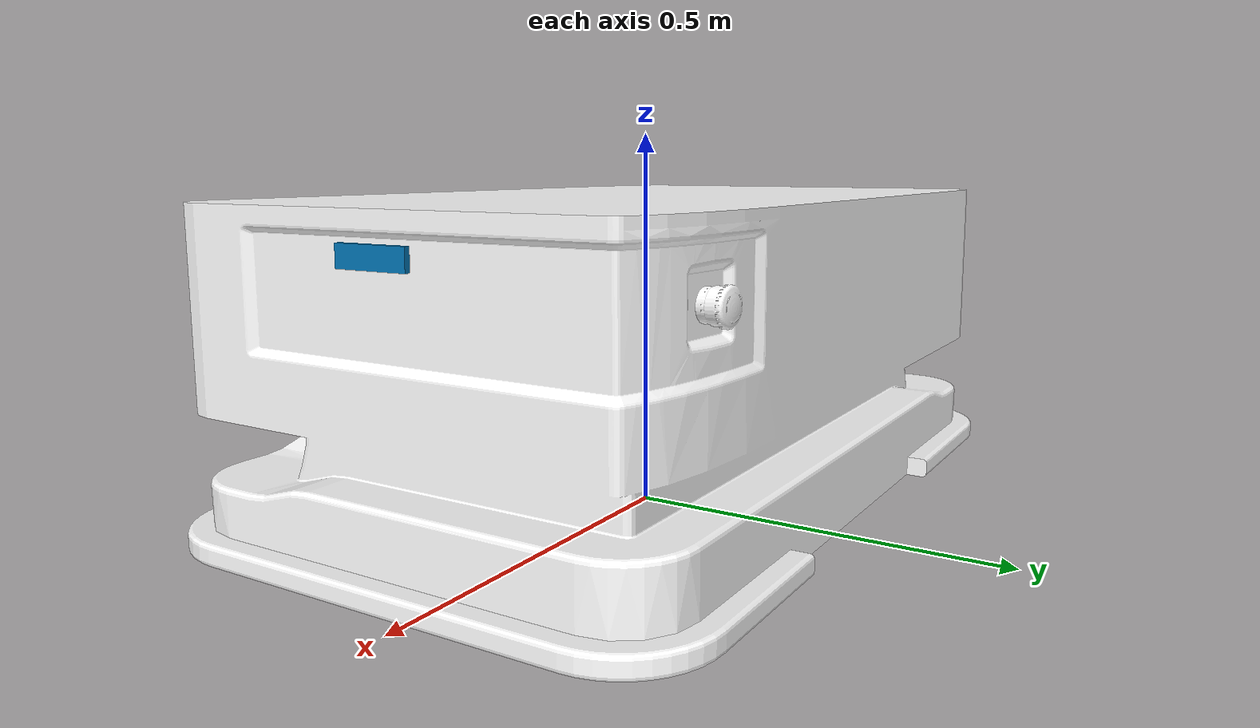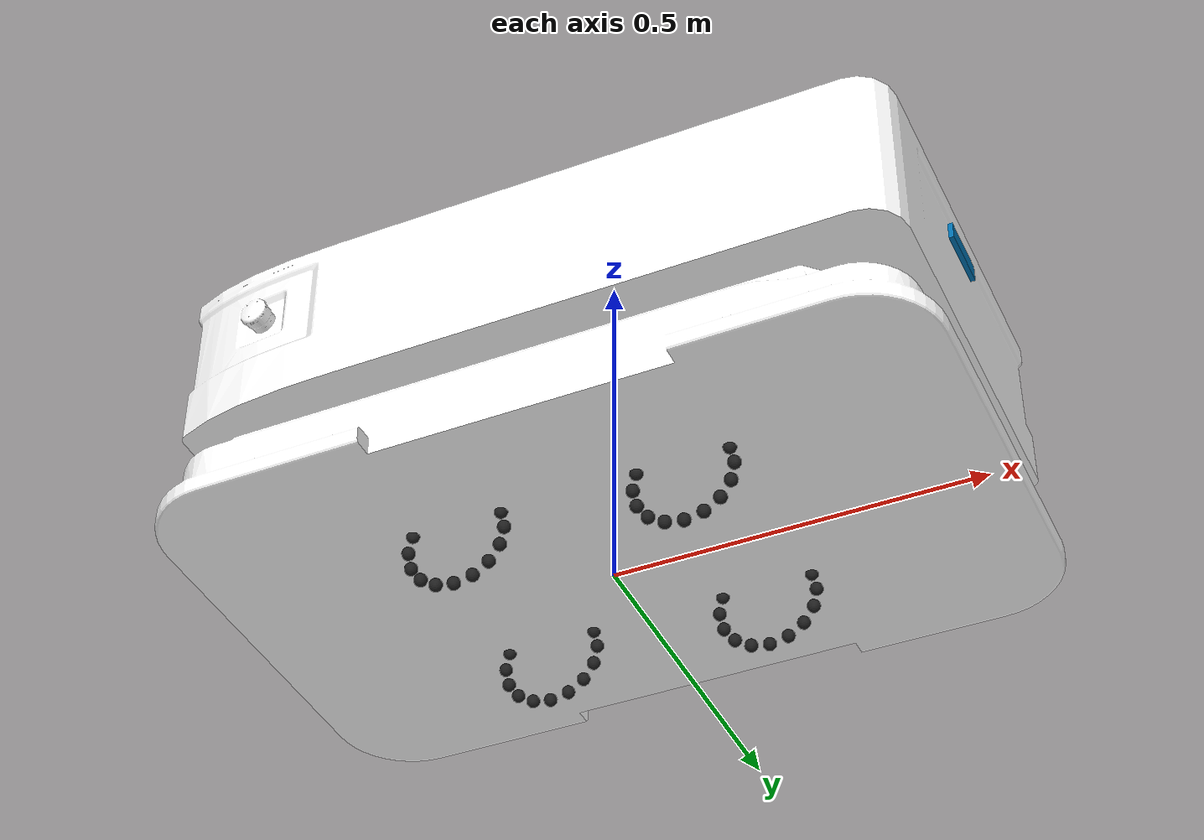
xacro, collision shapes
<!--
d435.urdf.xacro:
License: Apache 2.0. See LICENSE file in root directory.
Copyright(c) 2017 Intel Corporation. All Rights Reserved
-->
<?xml version="1.0" ?>
<robot name="MON300"
  xmlns:xacro="http://ros.org/wiki/xacro">
  <!-- XACRO arguments -->
  <xacro:arg name="wheel_joints_type" default="continuous"/>

  <!-- Included URDF/XACRO Files -->
  <xacro:include filename="$(find moying_mor_description)/urdf/accessories/d435.urdf.xacro"/>
  <xacro:include filename="$(find moying_mor_description)/urdf/MON300_transmission.xacro"/>
  <!-- Config parameters -->
  <xacro:arg name="simulation" default="true"/>
  <xacro:property name="use_gazebo" value="$(arg simulation)"/>

  <!-- Base Properties -->
  <xacro:property name="PI" value="3.141592653589793"/>
  <xacro:property name="pi" value="3.141592653589793"/>
    <xacro:property name="wheel_track" value="0.31"/>
    <xacro:property name="wheel_base" value="0.281"/>
    <xacro:property name="wheel_offset_z" value="-0.023"/>
  <xacro:property name="roller_type" value="simple"/>

  <xacro:property name="base_mass" value="100"/>
  <xacro:property name="wheel_mass" value="3"/>
  <xacro:property name="base_radius" value="0.1"/>
  <xacro:property name="wheel_radius" value="0.03"/>

  <!-- Inertial cuboid element -->
  <!-- Same def that box primitive (center) -->
  <xacro:macro name="cuboid_inertia_def" params="x y z mass">
    <inertia iyy="${mass*(z*z+x*x)/12.0}" ixx="${mass*(y*y+z*z)/12.0}" izz="${mass*(x*x+y*y)/12.0}" ixy="0.0" iyz="0.0" ixz="0.0"/>
  </xacro:macro>
  <xacro:macro name="cylinder_inertia_def" params="r h mass">
    <inertia ixx="${mass*(3*r*r+h*h)/12}" ixy="0" ixz="0" iyy="${mass*(3*r*r+h*h)/12}" iyz="0" izz="${mass*r*r/2}"/>
  </xacro:macro>

  <!-- Materials -->
  <material name="DarkGrey">
    <color rgba="0.3 0.3 0.3 1.0"/>
  </material>
  <material name="BrightWhite">
    <color rgba="0.8 0.8 0.8 1.0"/>
  </material>
  <material name="GlassWhite">
    <color rgba="1 1 1 1.0"/>
  </material>
  <material name="Pink">
    <color rgba="1 0.3 0.3 1.0"/>
  </material>

  <!-- Base footprint-->
  <link name="base_link"/>

  <joint name="base_footprint_joint" type="fixed">
    <parent link="base_link" />
    <child link="base_footprint" />
  </joint>

  <link name="base_footprint"/>

  <joint name="vehicle_body_joint" type="fixed">
    <origin
        xyz="0 0 0.03"
        rpy="0 0 0" />
    <parent link="base_link"/>
    <child link="vehicle_body"/>
  </joint>

  <!-- Vehicle body-->
  <link name="vehicle_body">
    <inertial>
      <mass value="${base_mass}"/>
      <origin rpy="0 0 0" xyz="0 0 0 "/>
      <cuboid_inertia_def x="1.002" y="0.1" z="0.622" mass="${base_mass}"/><!-- Technically 0.367 -->
    </inertial>
    <visual>
      <origin rpy="${PI/2} 0 ${PI/2}" xyz="0 0 0 "/>
      <geometry>
        <mesh filename="package://moying_mor_description/meshes/agv/MON0300-BODY.STL"/>
      </geometry>
      <material name="GlassWhite"/>
    </visual>
    <collision>
      <origin rpy="${PI/2} 0 ${PI/2}" xyz="0 0 0"/>
      <geometry>
        <mesh filename="package://moying_mor_description/meshes/agv/MON0300-BODY.STL"/>
      </geometry>
    </collision>
  </link>

  <!-- Wheels -->rotation_degree
    <xacro:property name="wheel_radius" value="0.07625"/>
    <xacro:property name="roller_radius" value="0.009"/>

    <xacro:macro name="roller" params="prefix suffix theta roller_type">
        <!-- rotation math: roller_joint_axis -->
        <xacro:property name="sqrt_2_2" value="${sqrt(2)/2}"/>
        <xacro:property name="roller_joint_axis_x" value="${cos(theta) * sqrt_2_2}"/>
        <xacro:property name="roller_joint_axis_y" value="${-reflect * sqrt_2_2}"/>
        <xacro:property name="roller_joint_axis_z" value="${sin(theta) * sqrt_2_2}"/>
        <!-- rotation math: get quaternion between x_axis (1,0,0) and roller_joint_axis
        https://stackoverflow.com/questions/1171849/finding-quaternion-representing-the-rotation-from-one-vector-to-another -->
        <xacro:property name="quat_x" value="${0}"/>
        <xacro:property name="quat_y" value="${roller_joint_axis_z}"/>
        <xacro:property name="quat_z" value="${-roller_joint_axis_y}"/>
        <xacro:property name="quat_w" value="${-(1+roller_joint_axis_x)}"/>
        <xacro:property name="quat_length" value="${sqrt(quat_y*quat_y + quat_z * quat_z+quat_w * quat_w)}"/>
        <xacro:property name="quat_normal_x" value="${0}"/>
        <xacro:property name="quat_normal_y" value="${quat_y/quat_length}"/>
        <xacro:property name="quat_normal_z" value="${quat_z/quat_length}"/>
        <xacro:property name="quat_normal_w" value="${quat_w/quat_length}"/>

        <!--  link  -->
        <link name="${prefix}_roller_${suffix}">
            <collision>
                <xacro:if value="${roller_type=='realistic'}">
                    <!--  quat_xyzw dosen't work ?! covert to rpy-->
                    <origin rpy="${atan2(2. * (quat_normal_w * quat_normal_x + quat_normal_y * quat_normal_z),
                              1. - 2. * (quat_normal_x * quat_normal_x + quat_normal_y * quat_normal_y))}
                     ${asin(2. * (quat_normal_w * quat_normal_y - quat_normal_z * quat_normal_x))}
                     ${atan2(2. * (quat_normal_w * quat_normal_z + quat_normal_x * quat_normal_y),
                              1. - 2. * (quat_normal_y * quat_normal_y + quat_normal_z * quat_normal_z))}"
                            xyz="0 0 0"/>
                    <geometry>
                        <mesh filename="package://rm_description/meshes/common/roller.stl" scale="0.001 0.001 0.001"/>
                    </geometry>
                </xacro:if>
                <xacro:if value="${roller_type=='simple'}">
                    <geometry>
                        <sphere radius="${roller_radius}"/>
                    </geometry>
                </xacro:if>
            </collision>
            <inertial>
                <mass value="0.036"/>
                <inertia ixx="3128e-9" ixy="0.0" ixz="0.0" iyy="3128e-9" iyz="0.0" izz="3128e-9"/>
            </inertial>
        </link>

        <joint name="${prefix}_roller_${suffix}_joint" type="continuous">
            <origin
                    xyz="${(wheel_radius-roller_radius)*cos(theta-pi/2)} 0 ${(wheel_radius-roller_radius)*sin(theta-pi/2)}"
                    rpy="0 0 0"/>
            <axis xyz="${roller_joint_axis_x} ${roller_joint_axis_y} ${roller_joint_axis_z}"/>
            <dynamics damping="0.0" friction="0.001"/>
            <parent link="${prefix}_wheel"/>
            <child link="${prefix}_roller_${suffix}"/>
        </joint>

        <gazebo reference="${prefix}_roller_${suffix}">
            <mu1 value="2000.0"/>
            <mu2 value="2000.0"/>
            <kp value="1000000.0"/>
            <kd value="100.0"/>
            <material>Gazebo/Black</material>
        </gazebo>

    </xacro:macro>

    <xacro:macro name="moying_wheel"
                 params="prefix connected_to wheel_x_offset wheel_y_offset wheel_z_offset reflect roller_type max_effort max_velocity">
        <!--  link  -->
        <link name="${prefix}_wheel">
            <visual>
                <geometry>
                    <xacro:if value="${reflect == 1}">
                        <mesh filename="package://rm_description/meshes/common/right_threaded_mecanum_wheel.stl"
                              scale="0.001 0.001 0.001"/>
                    </xacro:if>
                    <xacro:if value="${reflect == -1}">
                        <mesh filename="package://rm_description/meshes/common/left_threaded_mecanum_wheel.stl"
                              scale="0.001 0.001 0.001"/>
                    </xacro:if>
                </geometry>
            </visual>
            <inertial>
                <mass value="0.59"/>
                <inertia ixx="1.416e-3" ixy="0.0" ixz="0.0" iyy="2.749e-3" iyz="0.0" izz="1.416e-3"/>
            </inertial>
        </link>

        <!--  joint  -->
        <joint name="${prefix}_wheel_joint" type="revolute">
            <axis xyz="0 1 0"/>
            <origin xyz="${wheel_x_offset} ${wheel_y_offset} ${wheel_offset_z}" rpy="0 0 0"/>
            <!--      limit not work while type="continuous"-->
            <limit effort="${max_effort}" velocity="${max_velocity}" lower="-1e9" upper="1e9"/>
            <dynamics damping="0.0" friction="0.05"/>
            <parent link="${connected_to}"/>
            <child link="${prefix}_wheel"/>
        </joint>

        <xacro:unless value="${roller_type=='none'}">
            <!-- 16 roller  2pi/16=0.393-->
            <xacro:roller prefix="${prefix}" suffix="0" theta="${0*0.393}" roller_type="${roller_type}"/>
            <xacro:roller prefix="${prefix}" suffix="1" theta="${1*0.393}" roller_type="${roller_type}"/>
            <xacro:roller prefix="${prefix}" suffix="2" theta="${2*0.393}" roller_type="${roller_type}"/>
            <xacro:roller prefix="${prefix}" suffix="3" theta="${3*0.393}" roller_type="${roller_type}"/>
            <xacro:roller prefix="${prefix}" suffix="4" theta="${4*0.393}" roller_type="${roller_type}"/>
            <xacro:roller prefix="${prefix}" suffix="5" theta="${5*0.393}" roller_type="${roller_type}"/>
            <xacro:roller prefix="${prefix}" suffix="6" theta="${6*0.393}" roller_type="${roller_type}"/>
            <xacro:roller prefix="${prefix}" suffix="7" theta="${7*0.393}" roller_type="${roller_type}"/>
            <xacro:roller prefix="${prefix}" suffix="8" theta="${8*0.393}" roller_type="${roller_type}"/>
            <xacro:roller prefix="${prefix}" suffix="9" theta="${9*0.393}" roller_type="${roller_type}"/>
            <xacro:roller prefix="${prefix}" suffix="10" theta="${10*0.393}" roller_type="${roller_type}"/>
            <xacro:roller prefix="${prefix}" suffix="11" theta="${11*0.393}" roller_type="${roller_type}"/>
            <xacro:roller prefix="${prefix}" suffix="12" theta="${12*0.393}" roller_type="${roller_type}"/>
            <xacro:roller prefix="${prefix}" suffix="13" theta="${13*0.393}" roller_type="${roller_type}"/>
            <xacro:roller prefix="${prefix}" suffix="14" theta="${14*0.393}" roller_type="${roller_type}"/>
            <xacro:roller prefix="${prefix}" suffix="15" theta="${15*0.393}" roller_type="${roller_type}"/>
        </xacro:unless>

    </xacro:macro>

    <xacro:macro name="wheel_transmission" params="prefix mechanical_reduction">
        <transmission name="${prefix}_wheel_trans">
            <type>transmission_interface/SimpleTransmission</type>
            <actuator name="${prefix}_wheel_motor">
                <hardwareInterface>hardware_interface/EffortJointInterface</hardwareInterface>
                <mechanicalReduction>${mechanical_reduction}</mechanicalReduction>
            </actuator>
            <joint name="${prefix}_wheel_joint">
                <hardwareInterface>hardware_interface/EffortJointInterface</hardwareInterface>
            </joint>
        </transmission>
  </xacro:macro>

  <xacro:moying_wheel prefix="left_front" connected_to="vehicle_body"
                             wheel_x_offset="${wheel_track/2}" wheel_y_offset="${wheel_base/2}"
                             wheel_z_offset="${wheel_offset_z}"
                             reflect="1" roller_type="${roller_type}"
                             max_effort="5" max_velocity="50"/>
  <xacro:moying_wheel prefix="back_left" connected_to="vehicle_body"
                             wheel_x_offset="${-wheel_track/2}" wheel_y_offset="${wheel_base/2}"
                             wheel_z_offset="${wheel_offset_z}"
                             reflect="1" roller_type="${roller_type}"
                             max_effort="5" max_velocity="50"/>
  <xacro:moying_wheel prefix="front_right" connected_to="vehicle_body"
                             wheel_x_offset="${wheel_track/2}" wheel_y_offset="${-wheel_base/2}"
                             wheel_z_offset="${wheel_offset_z}"
                             reflect="1" roller_type="${roller_type}"
                             max_effort="5" max_velocity="50"/>
  <xacro:moying_wheel prefix="back_right" connected_to="vehicle_body"
                             wheel_x_offset="${-wheel_track/2}" wheel_y_offset="${-wheel_base/2}"
                             wheel_z_offset="${wheel_offset_z}"
                             reflect="1" roller_type="${roller_type}"
                             max_effort="5" max_velocity="50"/>

  <!-- Laser sensors-->
  <joint name="front_mapping_frame" type="fixed">
    <parent link="base_footprint"/>
    <child link="front_mapping_frame"/>
    <origin rpy="${0} 0 ${0}" xyz="0.45 -0.259 0.1"/>
  </joint>

  <link name="front_mapping_frame"/>

  <joint name="front_laser_joint" type="fixed">
    <parent link="vehicle_body"/>
    <child link="front_laser"/>
    <origin rpy="${pi} 0 ${-pi/4.0}" xyz="0.45 -0.259 0.1321"/>
  </joint>

  <link name="front_laser">
    <visual>
      <geometry>
        <mesh filename="package://sick_tim/meshes/sick_tim551.stl" />
      </geometry>
      <material name="blue" >
        <color rgba="0 0 1 1" />
      </material>
    </visual>
  </link>

  <xacro:if value="${use_gazebo}">
    <gazebo reference="front_laser">
      <visual>
        <material>
          <script>
            <uri>file://media/materials/scripts/gazebo.material</uri>
            <name>Gazebo/Blue</name>
          </script>
        </material>
      </visual>
    </gazebo>
  </xacro:if>

  <joint name="back_laser_joint" type="fixed">
    <parent link="vehicle_body"/>
    <child link="back_laser"/>
    <origin rpy="${pi} 0 ${pi/4.0*3}" xyz="-0.45 0.259 0.1321"/>
  </joint>

  <link name="back_laser">
    <visual>
      <geometry>
        <mesh filename="package://sick_tim/meshes/sick_tim551.stl" />
      </geometry>
      <material name="blue" >
        <color rgba="0 0 1 1" />
      </material>
    </visual>
  </link>

  <xacro:if value="${use_gazebo}">
    <gazebo reference="back_laser">
      <visual>
        <material>
          <script>
            <uri>file://media/materials/scripts/gazebo.material</uri>
            <name>Gazebo/Blue</name>
          </script>
        </material>
      </visual>
    </gazebo>
  </xacro:if>

  <!-- IMU link -->
  <joint name="imu_link_joint" type="fixed">
    <parent link="base_link"/>
    <child link="imu_link"/>
    <origin rpy="0 0 0" xyz="0 0 0.15"/>
  </joint>

  <link name="imu_link"/>

  <!-- Attach the RealSense D435 -->
  <sensor_d435 parent="vehicle_body" name="front_camera">
      <origin xyz="0.47765 0 0.3325" rpy="0 0 0"/>
  </sensor_d435>
  <sensor_d435 parent="vehicle_body" name="back_camera">
      <origin xyz="-0.47765 0 0.3325" rpy="0 0 ${pi}"/>
  </sensor_d435>

  <xacro:if value="${use_gazebo}">
    <xacro:include filename="$(find moying_mor_description)/urdf/MON300.gazebo" />
  </xacro:if>
</robot>

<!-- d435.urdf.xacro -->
<robot name="sensor_d435" xmlns:xacro="http://ros.org/wiki/xacro">
  <!-- Includes -->
  <!--xacro:include filename="$(find realsense2_description)/urdf/_materials.urdf.xacro" /-->
  <xacro:include filename="$(find moying_mor_description)/urdf/accessories/d435.gazebo.xacro" />
  <xacro:arg name="simulation" default="false"/>
  <xacro:arg name="sensor_prefix" default=""/>

  <xacro:property name="use_nominal" value="$(arg simulation)" />

  <xacro:macro name="sensor_d435" params="parent *origin name:=camera use_nominal_extrinsics:=${use_nominal}">
    <xacro:property name="M_PI" value="3.1415926535897931" />

    <!-- The following values are approximate, and the camera node
     publishing TF values with actual calibrated camera extrinsic values -->
    <xacro:property name="d435_cam_depth_to_infra1_offset" value="0.0"/>
    <xacro:property name="d435_cam_depth_to_infra2_offset" value="-0.050"/>
    <xacro:property name="d435_cam_depth_to_color_offset" value="0.015"/>

    <!-- The following values model the aluminum peripherial case for the
  	D435 camera, with the camera joint represented by the actual
  	peripherial camera tripod mount -->
    <xacro:property name="d435_cam_width" value="0.090"/>
    <xacro:property name="d435_cam_height" value="0.025"/>
    <xacro:property name="d435_cam_depth" value="0.02505"/>
    <xacro:property name="d435_cam_mount_from_center_offset" value="0.0149"/>
    <!-- glass cover is 0.1 mm inwards from front aluminium plate -->
    <xacro:property name="d435_glass_to_front" value="0.1e-3"/>
    <!-- see datasheet Revision 007, Fig. 4-4 page 65 -->
    <xacro:property name="d435_zero_depth_to_glass" value="4.2e-3"/>
    <!-- convenience precomputation to avoid clutter-->
    <xacro:property name="d435_mesh_x_offset" value="${d435_cam_mount_from_center_offset-d435_glass_to_front-d435_zero_depth_to_glass}"/>

    <!-- The following offset is relative the the physical D435 camera peripherial
  	camera tripod mount -->
    <xacro:property name="d435_cam_depth_px" value="${d435_cam_mount_from_center_offset}"/>
    <xacro:property name="d435_cam_depth_py" value="0.0175"/>
    <xacro:property name="d435_cam_depth_pz" value="${d435_cam_height/2}"/>

    <!-- camera body, with origin at bottom screw mount -->
    <joint name="${name}_joint" type="fixed">
      <xacro:insert_block name="origin" />
      <parent link="${parent}"/>
      <child link="${name}_bottom_screw_frame" />
    </joint>
    <link name="${name}_bottom_screw_frame"/>

    <joint name="${name}_link_joint" type="fixed">
      <origin xyz="${d435_mesh_x_offset} ${d435_cam_depth_py} ${d435_cam_depth_pz}" rpy="0 0 0"/>
      <parent link="${name}_bottom_screw_frame"/>
      <child link="${name}_link" />
    </joint>

    <link name="${name}_link">
      <visual>
        <!-- the mesh origin is at front plate in between the two infrared camera axes -->
        <origin xyz="${d435_zero_depth_to_glass + d435_glass_to_front} ${-d435_cam_depth_py} 0" rpy="${M_PI/2} 0 ${M_PI/2}"/>
        <geometry>
	        <mesh filename="package://moying_mor_description/meshes/accessories/d435.dae" />
        </geometry>
      </visual>
      <collision>
        <origin xyz="0 ${-d435_cam_depth_py} 0" rpy="0 0 0"/>
        <geometry>
          <box size="${d435_cam_depth} ${d435_cam_width} ${d435_cam_height}"/>
        </geometry>
      </collision>
      <inertial>
        <!-- The following are not reliable values, and should not be used for modeling -->
        <mass value="0.564" />
        <origin xyz="0 0 0" />
        <inertia ixx="0.003881243" ixy="0.0" ixz="0.0" iyy="0.000498940" iyz="0.0" izz="0.003879257" />
      </inertial>
    </link>

    <!-- Use the nominal extrinsics between camera frames if the calibrated extrinsics aren't being published. e.g. running the device in simulation  -->
    <xacro:if value="${use_nominal_extrinsics}">
      <!-- camera depth joints and links -->
      <joint name="${name}_depth_joint" type="fixed">
        <origin xyz="0 0 0" rpy="0 0 0"/>
        <parent link="${name}_link"/>
        <child link="${name}_depth_frame" />
      </joint>
      <link name="${name}_depth_frame"/>

      <joint name="${name}_depth_optical_joint" type="fixed">
        <origin xyz="0 0 0" rpy="${-M_PI/2} 0 ${-M_PI/2}" />
        <parent link="${name}_depth_frame" />
        <child link="${name}_depth_optical_frame" />
      </joint>
      <link name="${name}_depth_optical_frame"/>

      <!-- camera left IR joints and links -->
      <joint name="${name}_infra1_joint" type="fixed">
        <origin xyz="0 ${d435_cam_depth_to_infra1_offset} 0" rpy="0 0 0" />
        <parent link="${name}_link" />
        <child link="${name}_infra1_frame" />
      </joint>
      <link name="${name}_infra1_frame"/>

      <joint name="${name}_infra1_optical_joint" type="fixed">
        <origin xyz="0 0 0" rpy="${-M_PI/2} 0 ${-M_PI/2}" />
        <parent link="${name}_infra1_frame" />
        <child link="${name}_infra1_optical_frame" />
      </joint>
      <link name="${name}_infra1_optical_frame"/>

      <!-- camera right IR joints and links -->
      <joint name="${name}_infra2_joint" type="fixed">
        <origin xyz="0 ${d435_cam_depth_to_infra2_offset} 0" rpy="0 0 0" />
        <parent link="${name}_link" />
        <child link="${name}_infra2_frame" />
      </joint>
      <link name="${name}_infra2_frame"/>

      <joint name="${name}_infra2_optical_joint" type="fixed">
        <origin xyz="0 0 0" rpy="${-M_PI/2} 0 ${-M_PI/2}" />
        <parent link="${name}_infra2_frame" />
        <child link="${name}_infra2_optical_frame" />
      </joint>
      <link name="${name}_infra2_optical_frame"/>

      <!-- camera color joints and links -->
      <joint name="${name}_color_joint" type="fixed">
        <origin xyz="0 ${d435_cam_depth_to_color_offset} 0" rpy="0 0 0" />
        <parent link="${name}_link" />
        <child link="${name}_color_frame" />
      </joint>
      <link name="${name}_color_frame"/>

      <joint name="${name}_color_optical_joint" type="fixed">
        <origin xyz="0 0 0" rpy="${-M_PI/2} 0 ${-M_PI/2}" />
        <parent link="${name}_color_frame" />
        <child link="${name}_color_optical_frame" />
      </joint>
      <link name="${name}_color_optical_frame"/>

      <xacro:property name="sensor_pre" value="$(arg sensor_prefix)"/>
      <xacro:if value="${sensor_pre == ''}">
        <xacro:gazebo_d435 camera_name="${name}" topics_ns="${name}" depth_frame="${name}_depth_frame" color_frame="${name}_color_frame" infrared1_frame="${name}_infra1_frame" infrared2_frame="${name}_infra2_frame" depth_optical_frame="${name}_depth_optical_frame" color_optical_frame="${name}_color_optical_frame" infrared1_optical_frame="${name}_infra1_optical_frame" infrared2_optical_frame="${name}_infra2_optical_frame"/>
      </xacro:if>

      <xacro:unless value="${sensor_pre == ''}">
      <xacro:gazebo_d435 camera_name="${name}" topics_ns="$(arg sensor_prefix)/${name}" depth_frame="$(arg sensor_prefix)/${name}_depth_frame" color_frame="$(arg sensor_prefix)/${name}_color_frame" infrared1_frame="$(arg sensor_prefix)/${name}_infra1_frame" infrared2_frame="$(arg sensor_prefix)/${name}_infra2_frame" depth_optical_frame="$(arg sensor_prefix)/${name}_depth_optical_frame" color_optical_frame="$(arg sensor_prefix)/${name}_color_optical_frame" infrared1_optical_frame="$(arg sensor_prefix)/${name}_infra1_optical_frame" infrared2_optical_frame="$(arg sensor_prefix)/${name}_infra2_optical_frame"/>
      </xacro:unless>

    </xacro:if>

  </xacro:macro>
</robot>
